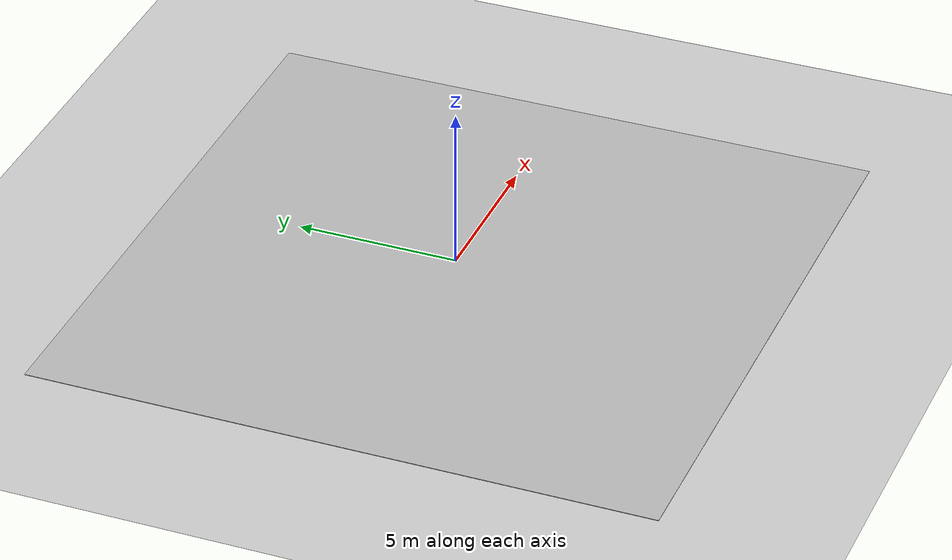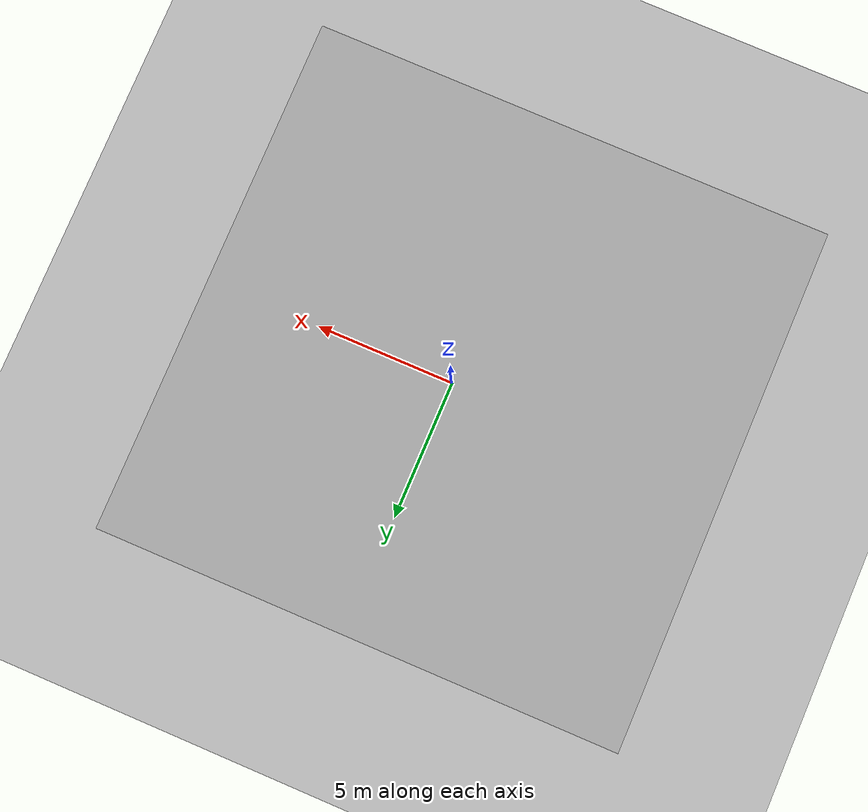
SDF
<?xml version="1.0" ?>
<sdf version="1.6">
  <world name="pathfinding_table">
    <include>
      <uri>model://ground_plane</uri>
    </include>
    <include>
      <uri>model://sun</uri>
    </include>

    <include>
      <uri>model://map_floor</uri>
    </include>
    <physics type="ode">
      <real_time_update_rate>1000.0</real_time_update_rate>
      <max_step_size>0.001</max_step_size>
      <real_time_factor>1</real_time_factor>
    </physics>
  </world>
</sdf>

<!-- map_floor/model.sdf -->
<sdf version="1.6">
  <model name="map_floor">
    <static>true</static>
    <pose>-0.4 -0.3 0.001 0 0 0</pose>
    <link name="link">
      <visual name="visual">
        <geometry>
          <plane>
            <normal>0 0 1</normal>
            <size>19.2 19.2</size>
          </plane>
        </geometry>
        <material>
          <script>
            <uri>model://map_floor/materials/scripts</uri>
            <uri>model://map_floor/materials/textures</uri>
            <name>MapFloorMaterial</name>
          </script>
        </material>
      </visual>
    </link>
  </model>
</sdf>
